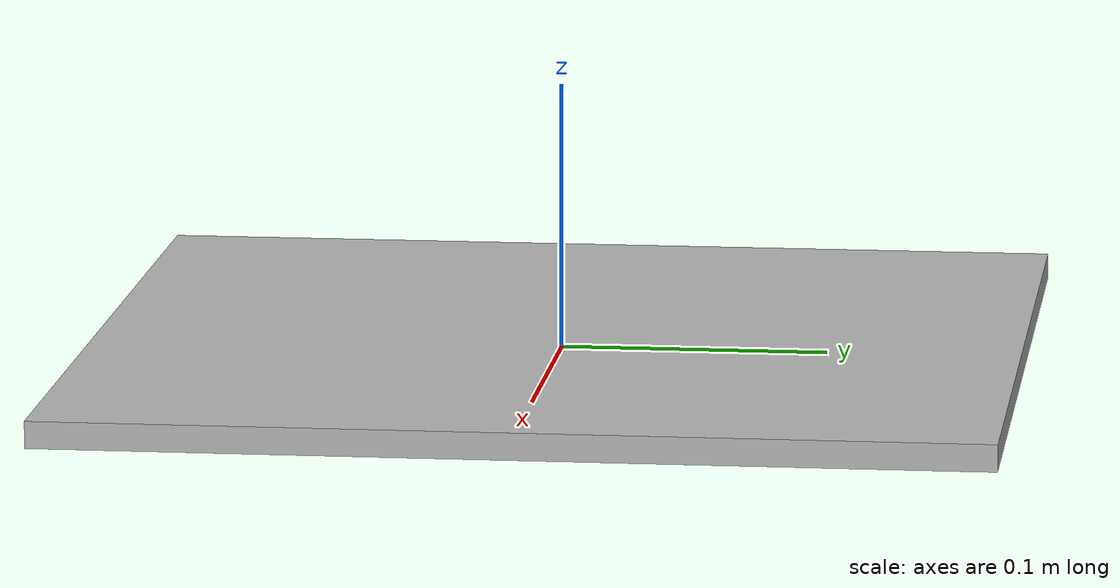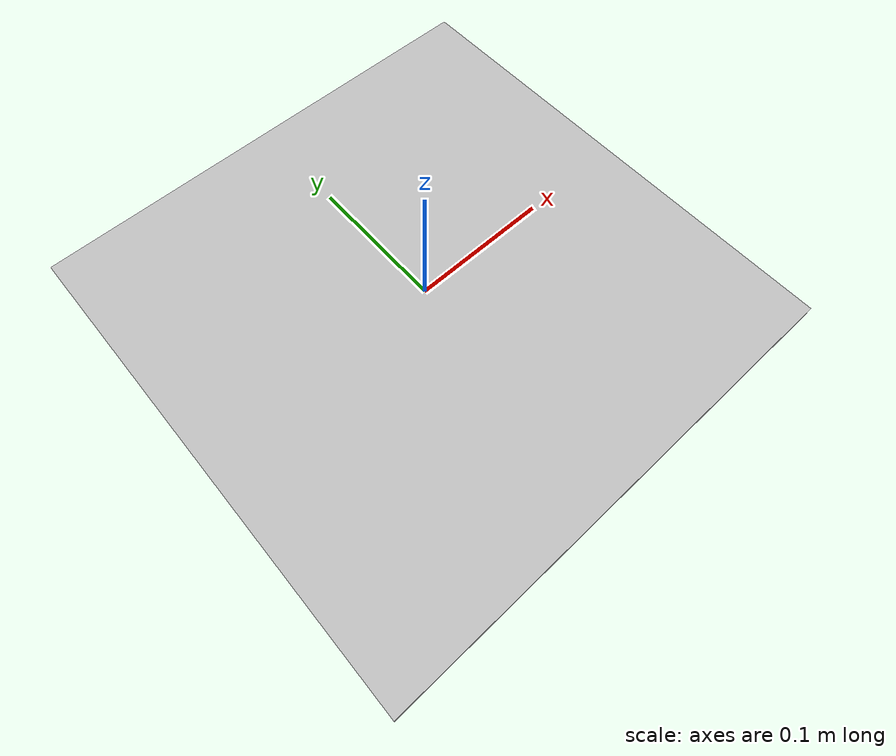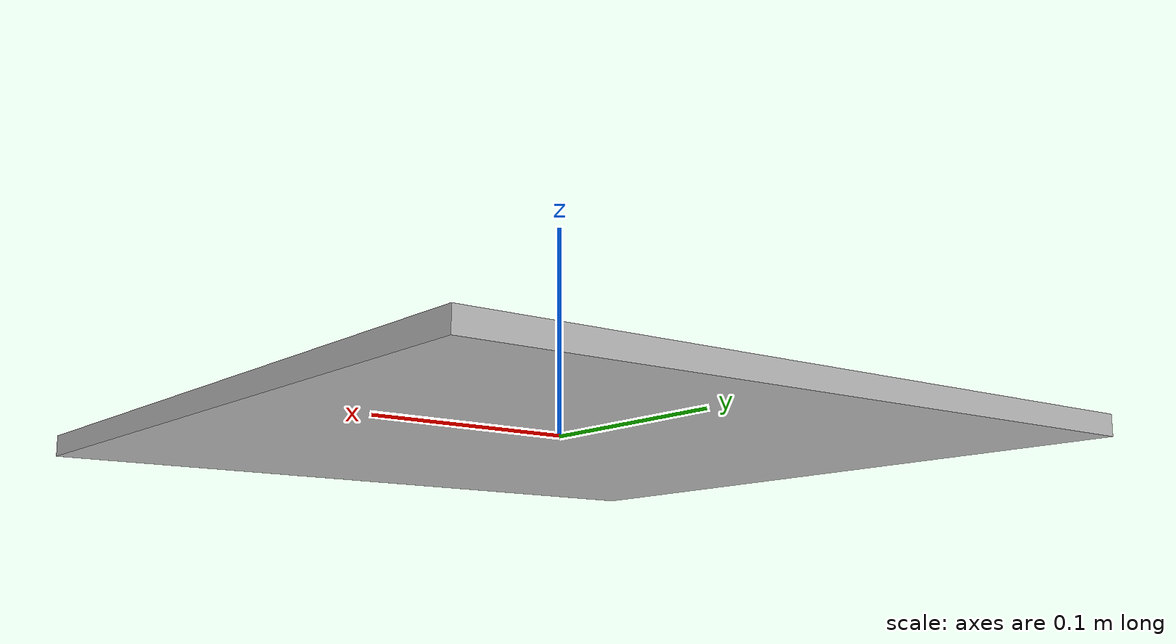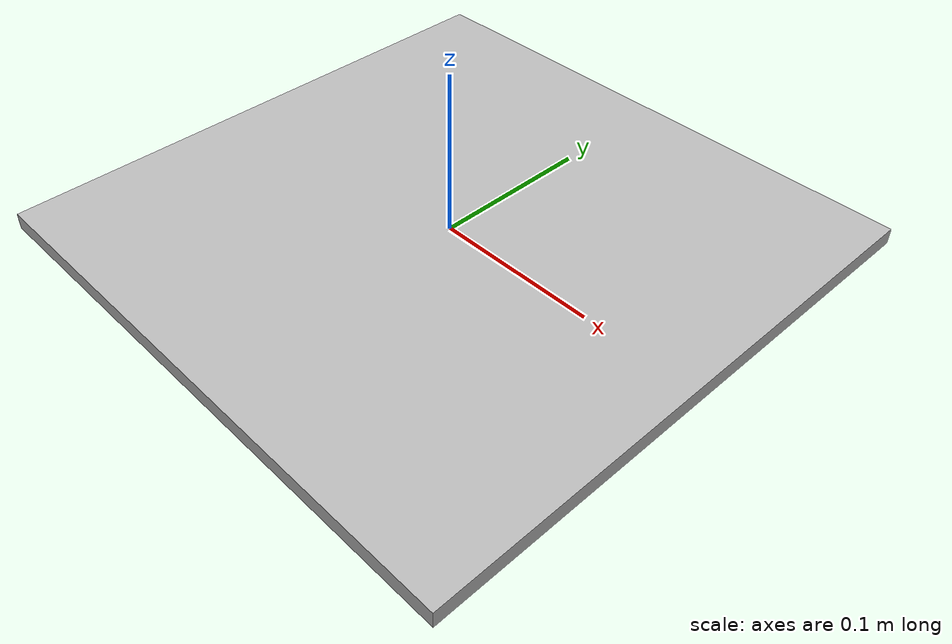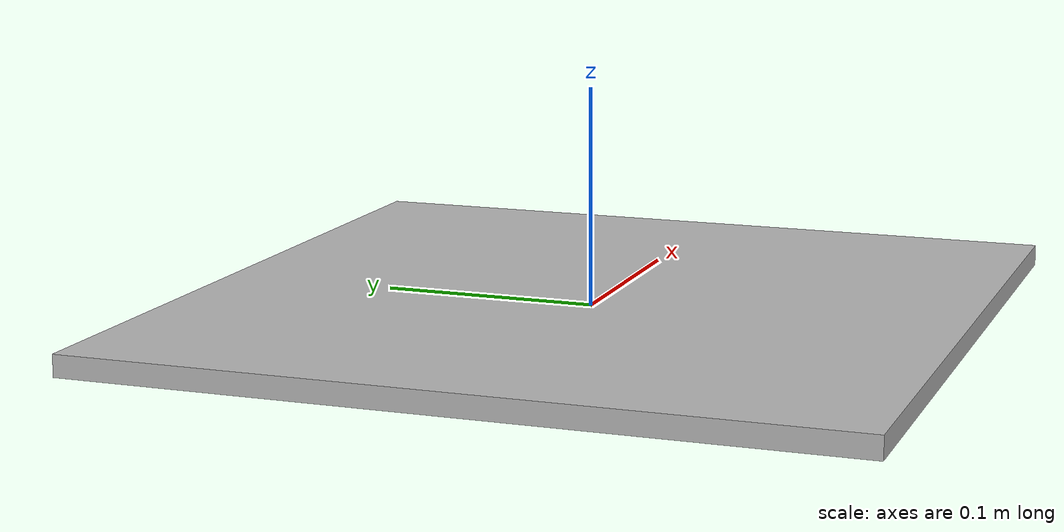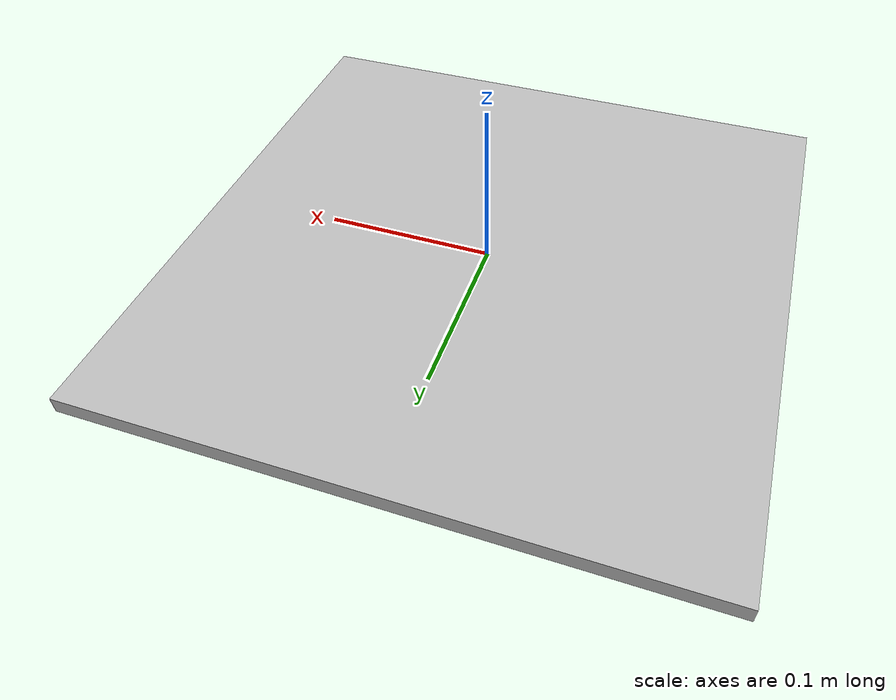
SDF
<?xml version='1.0'?>
<sdf version='1.6'>
  <model name='Apriltag36_11_00016'>
    <link name='main'>
    <pose frame=''>0 0 0 0 0 0</pose>
      <visual name='main_Visual'>
        <geometry>
          <box>
          <size>0.348 0.348 0.01</size>
          </box>
        </geometry>
           <material>
          <script>
            <uri>model://Apriltag36_11_00016/materials/scripts</uri>
            <uri>model://Apriltag36_11_00016/materials/textures</uri>
            <name>Apriltag36_11_00016</name>
          </script>
        </material>
      </visual>
     </link>
    <static>1</static>
  </model>
</sdf>
